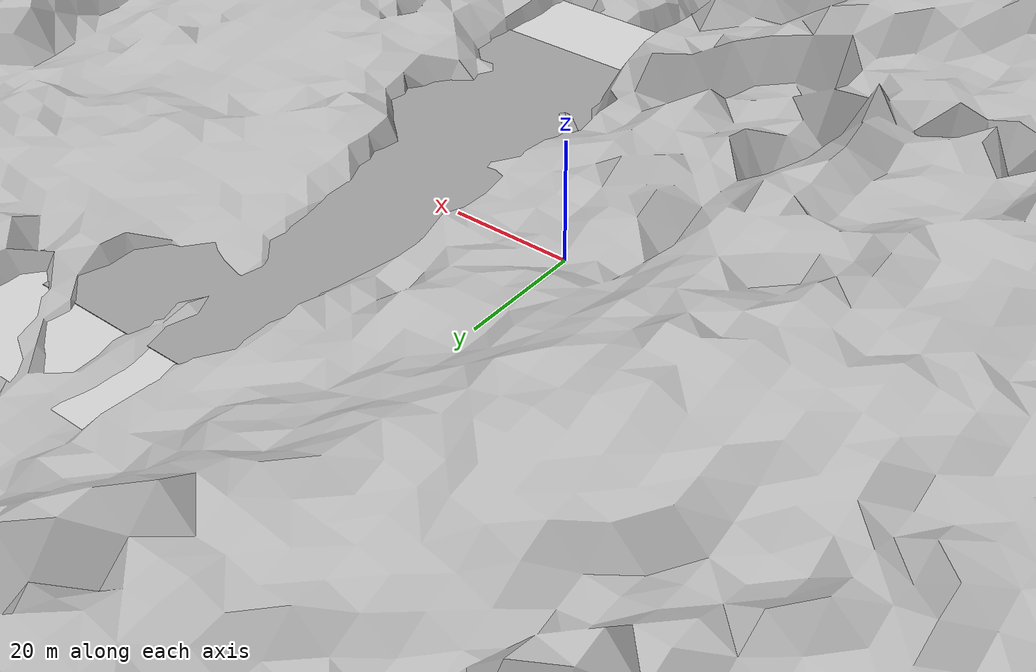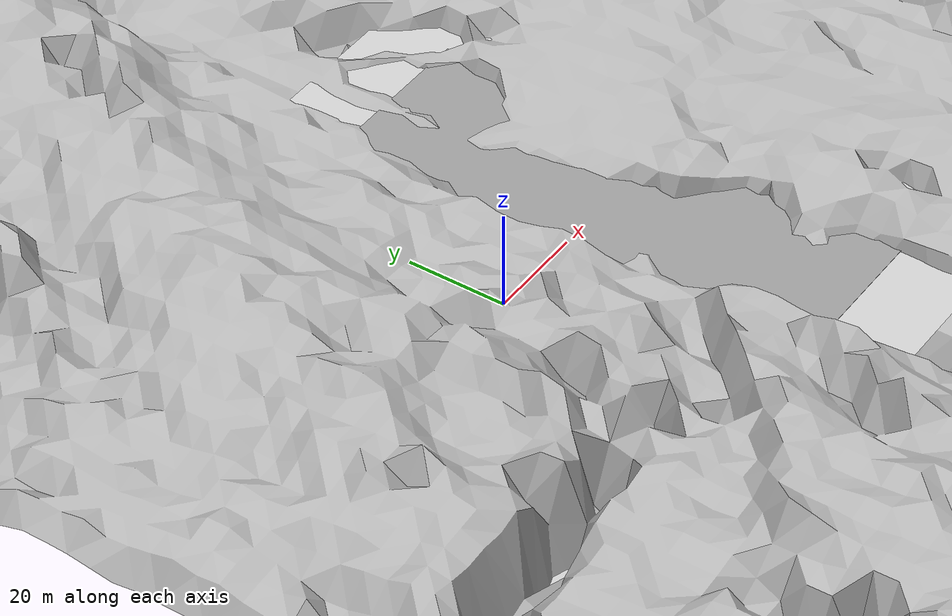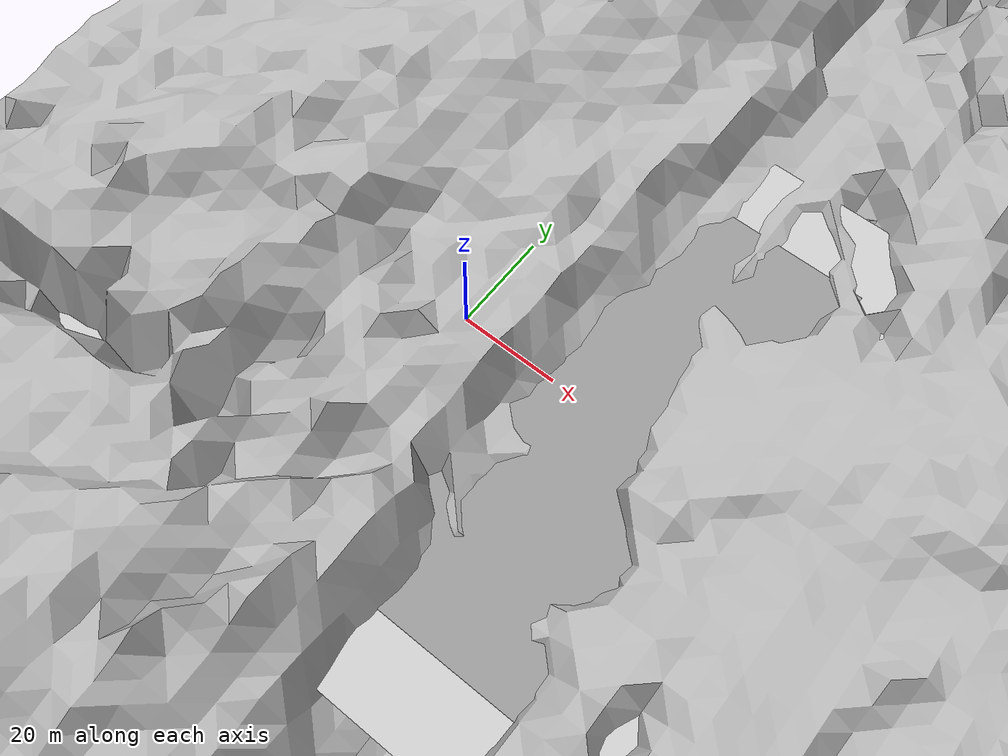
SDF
<sdf version="1.6">
 <world name="default">
  <light name="sun" type="directional">
   <pose>0 0 10 0 -0 0</pose>
   <diffuse>0.8 0.8 0.8 1</diffuse>
   <specular>0.2 0.2 0.2 1</specular>
   <attenuation>
    <range>1000</range>
    <constant>0.9</constant>
    <linear>0.01</linear>
    <quadratic>0.001</quadratic>
   </attenuation>
   <direction>-0.5 0.1 -0.9</direction>
  </light>
  <model name="ground_plane">
   <static>1</static>
   <link name="link">
    <collision name="collision">
     <geometry><plane><normal>0 0 1</normal><size>100 100</size></plane></geometry>
     <surface>
      <contact><collide_bitmask>65535</collide_bitmask></contact>
      <friction><ode><mu>100</mu><mu2>50</mu2></ode></friction>
     </surface>
    </collision>
    <visual name="visual">
     <cast_shadows>0</cast_shadows>
     <geometry><plane><normal>0 0 1</normal><size>100 100</size></plane></geometry>
     <material>
      <script><uri>file://media/materials/scripts/gazebo.material</uri><name>Gazebo/Grey</name></script>
     </material>
    </visual>
   </link>
  </model>
  <gravity>0 0 -9.8</gravity>
  <magnetic_field>6e-06 2.3e-05 -4.2e-05</magnetic_field>
  <atmosphere type="adiabatic"/>
  <physics name="default_physics" default="0" type="ode">
   <max_step_size>0.001</max_step_size>
   <real_time_factor>1</real_time_factor>
   <real_time_update_rate>1000</real_time_update_rate>
  </physics>
  <scene><ambient>0.4 0.4 0.4 1</ambient><background>0.7 0.7 0.7 1</background><shadows>1</shadows></scene>
  <audio><device>default</device></audio>
  <spherical_coordinates>
   <surface_model>EARTH_WGS84</surface_model>
   <latitude_deg>0</latitude_deg>
   <longitude_deg>0</longitude_deg>
   <elevation>0</elevation>
   <heading_deg>0</heading_deg>
  </spherical_coordinates>
  <model name="Tree 2 0.7">
   <static>1</static>
   <pose>1.99998 1.51411 0 1.57079 -0 0</pose>
   <link name="link">
    <collision name="collision">
     <geometry><mesh><scale>0.7 0.7 0.7</scale><uri>model://tree_2/meshes/tree_2.obj</uri></mesh></geometry>
    </collision>
    <visual name="visual">
     <geometry><mesh><scale>0.7 0.7 0.7</scale><uri>model://tree_2/meshes/tree_2.obj</uri></mesh></geometry>
    </visual>
   </link>
  </model>
  <model name="Tree 2 0.7_1">
   <static>1</static>
   <pose>1.9895 7.48392 0 1.57079 -0 0</pose>
   <link name="link">
    <collision name="collision">
     <geometry><mesh><scale>0.7 0.7 0.7</scale><uri>model://tree_2/meshes/tree_2.obj</uri></mesh></geometry>
    </collision>
    <visual name="visual">
     <geometry><mesh><scale>0.7 0.7 0.7</scale><uri>model://tree_2/meshes/tree_2.obj</uri></mesh></geometry>
    </visual>
   </link>
  </model>
  <model name="Tree 2 0.7_3">
   <static>1</static>
   <pose>5.98881 1.45892 0 1.57079 -0 0</pose>
   <link name="link">
    <collision name="collision">
     <geometry><mesh><scale>0.7 0.7 0.7</scale><uri>model://tree_2/meshes/tree_2.obj</uri></mesh></geometry>
    </collision>
    <visual name="visual">
     <geometry><mesh><scale>0.7 0.7 0.7</scale><uri>model://tree_2/meshes/tree_2.obj</uri></mesh></geometry>
    </visual>
   </link>
  </model>
  <model name="Tree 2 0.7_4">
   <static>1</static>
   <pose>3.98632 4.46966 0 1.57079 -0 0</pose>
   <link name="link">
    <collision name="collision">
     <geometry><mesh><scale>0.7 0.7 0.7</scale><uri>model://tree_2/meshes/tree_2.obj</uri></mesh></geometry>
    </collision>
    <visual name="visual">
     <geometry><mesh><scale>0.7 0.7 0.7</scale><uri>model://tree_2/meshes/tree_2.obj</uri></mesh></geometry>
    </visual>
   </link>
  </model>
  <model name="Tree 2 0.7_6">
   <static>1</static>
   <pose>3.98403 7.45619 0 1.57079 -0 0</pose>
   <link name="link">
    <collision name="collision">
     <geometry><mesh><scale>0.7 0.7 0.7</scale><uri>model://tree_2/meshes/tree_2.obj</uri></mesh></geometry>
    </collision>
    <visual name="visual">
     <geometry><mesh><scale>0.7 0.7 0.7</scale><uri>model://tree_2/meshes/tree_2.obj</uri></mesh></geometry>
    </visual>
   </link>
  </model>
  <model name="Tree 2 0.7_7">
   <static>1</static>
   <pose>5.98021 7.48336 0 1.57079 -0 0</pose>
   <link name="link">
    <collision name="collision">
     <geometry><mesh><scale>0.7 0.7 0.7</scale><uri>model://tree_2/meshes/tree_2.obj</uri></mesh></geometry>
    </collision>
    <visual name="visual">
     <geometry><mesh><scale>0.7 0.7 0.7</scale><uri>model://tree_2/meshes/tree_2.obj</uri></mesh></geometry>
    </visual>
   </link>
  </model>
  <model name="Tree 1">
   <static>1</static>
   <pose>6.07262 4.5136 0 1.57079 -0 0</pose>
   <link name="link">
    <collision name="collision">
     <geometry><mesh><scale>1.2 1.2 1.2</scale><uri>model://tree_1/meshes/tree_1.obj</uri></mesh></geometry>
    </collision>
    <visual name="visual">
     <geometry><mesh><scale>1.2 1.2 1.2</scale><uri>model://tree_1/meshes/tree_1.obj</uri></mesh></geometry>
    </visual>
   </link>
  </model>
  <model name="Tree 2 0.7_0">
   <static>1</static>
   <pose>7.98588 4.41638 0 1.57079 -0 0</pose>
   <link name="link">
    <collision name="collision">
     <geometry><mesh><scale>0.7 0.7 0.7</scale><uri>model://tree_2/meshes/tree_2.obj</uri></mesh></geometry>
    </collision>
    <visual name="visual">
     <geometry><mesh><scale>0.7 0.7 0.7</scale><uri>model://tree_2/meshes/tree_2.obj</uri></mesh></geometry>
    </visual>
   </link>
  </model>
  <model name="Tree 4">
   <static>1</static>
   <pose>3.98331 1.45791 0 1.57079 -0 0</pose>
   <link name="link">
    <collision name="collision">
     <geometry><mesh><scale>0.3 0.3 0.3</scale><uri>model://tree_4/meshes/tree_4.obj</uri></mesh></geometry>
    </collision>
    <visual name="visual">
     <geometry><mesh><scale>0.3 0.3 0.3</scale><uri>model://tree_4/meshes/tree_4.obj</uri></mesh></geometry>
    </visual>
   </link>
  </model>
  <model name="Tree 1_0">
   <static>1</static>
   <pose>7.98936 1.48985 0 1.57079 -0 0</pose>
   <link name="link">
    <collision name="collision">
     <geometry><mesh><scale>1.2 1.2 1.2</scale><uri>model://tree_1/meshes/tree_1.obj</uri></mesh></geometry>
    </collision>
    <visual name="visual">
     <geometry><mesh><scale>1.2 1.2 1.2</scale><uri>model://tree_1/meshes/tree_1.obj</uri></mesh></geometry>
    </visual>
   </link>
  </model>
  <model name="Tree 5">
   <static>1</static>
   <pose>2.04326 4.51903 0 1.57079 -0 0</pose>
   <link name="link">
    <collision name="collision">
     <geometry><mesh><scale>1 1 1</scale><uri>model://tree_5/meshes/tree.obj</uri></mesh></geometry>
    </collision>
    <visual name="visual">
     <geometry><mesh><scale>1 1 1</scale><uri>model://tree_5/meshes/tree.obj</uri></mesh></geometry>
    </visual>
   </link>
  </model>
  <model name="Tree 4_0">
   <static>1</static>
   <pose>7.97574 7.52063 0 1.57079 -0 0</pose>
   <link name="link">
    <collision name="collision">
     <geometry><mesh><scale>0.3 0.3 0.3</scale><uri>model://tree_4/meshes/tree_4.obj</uri></mesh></geometry>
    </collision>
    <visual name="visual">
     <geometry><mesh><scale>0.3 0.3 0.3</scale><uri>model://tree_4/meshes/tree_4.obj</uri></mesh></geometry>
    </visual>
   </link>
  </model>
  <model name="ground_plane_0">
   <static>1</static>
   <link name="link">
    <collision name="collision">
     <geometry><plane><normal>0 0 1</normal><size>100 100</size></plane></geometry>
     <surface>
      <contact><collide_bitmask>65535</collide_bitmask></contact>
      <friction><ode><mu>100</mu><mu2>50</mu2></ode></friction>
     </surface>
    </collision>
    <visual name="visual">
     <cast_shadows>0</cast_shadows>
     <geometry><plane><normal>0 0 1</normal><size>100 100</size></plane></geometry>
     <material>
      <script><uri>file://media/materials/scripts/gazebo.material</uri><name>Gazebo/Grey</name></script>
     </material>
    </visual>
   </link>
   <pose>4.16184 -0.605472 0 0 -0 0</pose>
  </model>
  <model name="sand_heightmap">
   <static>1</static>
   <link name="link">
    <collision name="ground">
     <geometry><mesh><uri>model://sand_heightmap/meshes/heightmap.dae</uri></mesh></geometry>
    </collision>
    <visual name="ground_sand">
     <geometry><mesh><uri>model://sand_heightmap/meshes/heightmap.dae</uri></mesh></geometry>
     <material>
      <script>
       <uri>file://Media/materials/scripts/sand.material</uri>
       <name>UUVSimulator/SandAndStones</name>
      </script>
      <emissive>0.6 0.6 0.6 1</emissive>
     </material>
    </visual>
   </link>
   <pose>131.668 74.7638 0.01 0 -0 0</pose>
  </model>
 </world>
</sdf>
